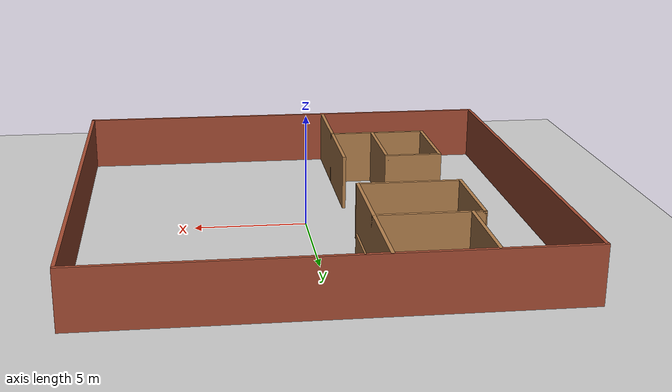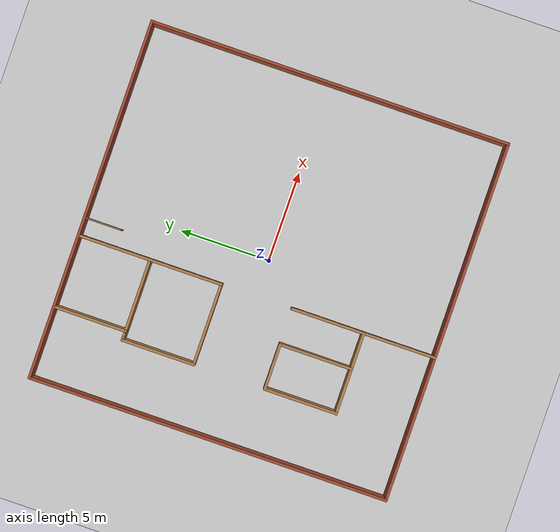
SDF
<?xml version='1.0'?>
<sdf version='1.6'>
  <world name = "model.sdf">
  <include>
      <uri>model://sun</uri>
    </include>

    <!-- A ground plane -->
    <include>
      <uri>model://ground_plane</uri>
    </include>
  <model name='ground_floor'>
    <pose frame=''>0 0.01 0 0 -0 0</pose>
    <link name='Wall_1'>
      <collision name='Wall_1_Collision'>
        <geometry>
          <box>
            <size>20.15 0.15 2.5</size>
          </box>
        </geometry>
        <pose frame=''>0 0 1.25 0 -0 0</pose>
      </collision>
      <visual name='Wall_1_Visual'>
        <pose frame=''>0 0 1.25 0 -0 0</pose>
        <geometry>
          <box>
            <size>20.15 0.15 2.5</size>
          </box>
        </geometry>
        <material>
          <script>
            <uri>file://media/materials/scripts/gazebo.material</uri>
            <name>Gazebo/Bricks</name>
          </script>
          <ambient>1 1 1 1</ambient>
        </material>
        <meta>
          <layer>0</layer>
        </meta>
      </visual>
      <pose frame=''>0 10.01 0 0 -0 0</pose>
    </link>
    <link name='Wall_10'>
      <collision name='Wall_10_Collision'>
        <geometry>
          <box>
            <size>20.15 0.15 2.5</size>
          </box>
        </geometry>
        <pose frame=''>0 0 1.25 0 -0 0</pose>
      </collision>
      <visual name='Wall_10_Visual'>
        <pose frame=''>0 0 1.25 0 -0 0</pose>
        <geometry>
          <box>
            <size>20.15 0.15 2.5</size>
          </box>
        </geometry>
        <material>
          <script>
            <uri>file://media/materials/scripts/gazebo.material</uri>
            <name>Gazebo/Bricks</name>
          </script>
          <ambient>1 1 1 1</ambient>
        </material>
        <meta>
          <layer>0</layer>
        </meta>
      </visual>
      <pose frame=''>10 -0.01 0 0 -0 1.5708</pose>
    </link>
    <link name='Wall_12'>
      <collision name='Wall_12_Collision'>
        <geometry>
          <box>
            <size>8.15 0.15 2.5</size>
          </box>
        </geometry>
        <pose frame=''>0 0 1.25 0 -0 0</pose>
      </collision>
      <visual name='Wall_12_Visual'>
        <pose frame=''>0 0 1.25 0 -0 0</pose>
        <geometry>
          <box>
            <size>8.15 0.15 2.5</size>
          </box>
        </geometry>
        <material>
          <script>
            <uri>file://media/materials/scripts/gazebo.material</uri>
            <name>Gazebo/Wood</name>
          </script>
          <ambient>1 1 1 1</ambient>
        </material>
        <meta>
          <layer>0</layer>
        </meta>
      </visual>
      <pose frame=''>-2 5.99 0 0 -0 -1.5708</pose>
    </link>
    <link name='Wall_14'>
      <collision name='Wall_14_Collision'>
        <geometry>
          <box>
            <size>4.15 0.15 2.5</size>
          </box>
        </geometry>
        <pose frame=''>0 0 1.25 0 -0 0</pose>
      </collision>
      <visual name='Wall_14_Visual'>
        <pose frame=''>0 0 1.25 0 -0 0</pose>
        <geometry>
          <box>
            <size>4.15 0.15 2.5</size>
          </box>
        </geometry>
        <material>
          <script>
            <uri>file://media/materials/scripts/gazebo.material</uri>
            <name>Gazebo/Wood</name>
          </script>
          <ambient>1 1 1 1</ambient>
        </material>
        <meta>
          <layer>0</layer>
        </meta>
      </visual>
      <pose frame=''>-6 7.99 0 0 -0 -1.5708</pose>
    </link>
    <link name='Wall_16'>
      <collision name='Wall_16_Collision'>
        <geometry>
          <box>
            <size>0.65 0.15 2.5</size>
          </box>
        </geometry>
        <pose frame=''>0 0 1.25 0 -0 0</pose>
      </collision>
      <visual name='Wall_16_Visual'>
        <pose frame=''>0 0 1.25 0 -0 0</pose>
        <geometry>
          <box>
            <size>0.65 0.15 2.5</size>
          </box>
        </geometry>
        <material>
          <script>
            <uri>file://media/materials/scripts/gazebo.material</uri>
            <name>Gazebo/Wood</name>
          </script>
          <ambient>1 1 1 1</ambient>
        </material>
        <meta>
          <layer>0</layer>
        </meta>
      </visual>
      <pose frame=''>-6.25 5.99 0 0 -0 3.14159</pose>
    </link>
    <link name='Wall_18'>
      <collision name='Wall_18_Collision'>
        <geometry>
          <box>
            <size>4.15 0.15 2.5</size>
          </box>
        </geometry>
        <pose frame=''>0 0 1.25 0 -0 0</pose>
      </collision>
      <visual name='Wall_18_Visual'>
        <pose frame=''>0 0 1.25 0 -0 0</pose>
        <geometry>
          <box>
            <size>4.15 0.15 2.5</size>
          </box>
        </geometry>
        <material>
          <script>
            <uri>file://media/materials/scripts/gazebo.material</uri>
            <name>Gazebo/Wood</name>
          </script>
          <ambient>1 1 1 1</ambient>
        </material>
        <meta>
          <layer>0</layer>
        </meta>
      </visual>
      <pose frame=''>-6.5 3.99 0 0 -0 -1.5708</pose>
    </link>
    <link name='Wall_20'>
      <collision name='Wall_20_Collision'>
        <geometry>
          <box>
            <size>4.65 0.15 2.5</size>
          </box>
        </geometry>
        <pose frame=''>0 0 1.25 0 -0 0</pose>
      </collision>
      <visual name='Wall_20_Visual'>
        <pose frame=''>0 0 1.25 0 -0 0</pose>
        <geometry>
          <box>
            <size>4.65 0.15 2.5</size>
          </box>
        </geometry>
        <material>
          <script>
            <uri>file://media/materials/scripts/gazebo.material</uri>
            <name>Gazebo/Wood</name>
          </script>
          <ambient>1 1 1 1</ambient>
        </material>
        <meta>
          <layer>0</layer>
        </meta>
      </visual>
      <pose frame=''>-4.25 1.99 0 0 -0 0</pose>
    </link>
    <link name='Wall_22'>
      <collision name='Wall_22_Collision'>
        <geometry>
          <box>
            <size>2.07 0.07 2.5</size>
          </box>
        </geometry>
        <pose frame=''>0 0 1.25 0 -0 0</pose>
      </collision>
      <visual name='Wall_22_Visual'>
        <pose frame=''>0 0 1.25 0 -0 0</pose>
        <geometry>
          <box>
            <size>2.07 0.07 2.5</size>
          </box>
        </geometry>
        <material>
          <script>
            <uri>file://media/materials/scripts/gazebo.material</uri>
            <name>Gazebo/Wood</name>
          </script>
          <ambient>1 1 1 1</ambient>
        </material>
        <meta>
          <layer>0</layer>
        </meta>
      </visual>
      <pose frame=''>-1 8.99 0 0 -0 -1.5708</pose>
    </link>
    <link name='Wall_28'>
      <collision name='Wall_28_Collision'>
        <geometry>
          <box>
            <size>4.65 0.15 2.5</size>
          </box>
        </geometry>
        <pose frame=''>0 0 1.25 0 -0 0</pose>
      </collision>
      <visual name='Wall_28_Visual'>
        <pose frame=''>0 0 1.25 0 -0 0</pose>
        <geometry>
          <box>
            <size>4.65 0.15 2.5</size>
          </box>
        </geometry>
        <material>
          <script>
            <uri>file://media/materials/scripts/gazebo.material</uri>
            <name>Gazebo/Wood</name>
          </script>
          <ambient>1 1 1 1</ambient>
        </material>
        <meta>
          <layer>0</layer>
        </meta>
      </visual>
      <pose frame=''>-4.25 5.99 0 0 -0 0</pose>
    </link>
    <link name='Wall_3'>
      <collision name='Wall_3_Collision'>
        <geometry>
          <box>
            <size>20.15 0.15 2.5</size>
          </box>
        </geometry>
        <pose frame=''>0 0 1.25 0 -0 0</pose>
      </collision>
      <visual name='Wall_3_Visual'>
        <pose frame=''>0 0 1.25 0 -0 0</pose>
        <geometry>
          <box>
            <size>20.15 0.15 2.5</size>
          </box>
        </geometry>
        <material>
          <script>
            <uri>file://media/materials/scripts/gazebo.material</uri>
            <name>Gazebo/Bricks</name>
          </script>
          <ambient>1 1 1 1</ambient>
        </material>
        <meta>
          <layer>0</layer>
        </meta>
      </visual>
      <pose frame=''>-10 -0.01 0 0 -0 -1.5708</pose>
    </link>
    <link name='Wall_30'>
      <collision name='Wall_30_Collision'>
        <geometry>
          <box>
            <size>2.65 0.15 2.5</size>
          </box>
        </geometry>
        <pose frame=''>0 0 1.25 0 -0 0</pose>
      </collision>
      <visual name='Wall_30_Visual'>
        <pose frame=''>0 0 1.25 0 -0 0</pose>
        <geometry>
          <box>
            <size>2.65 0.15 2.5</size>
          </box>
        </geometry>
        <material>
          <script>
            <uri>file://media/materials/scripts/gazebo.material</uri>
            <name>Gazebo/Wood</name>
          </script>
          <ambient>1 1 1 1</ambient>
        </material>
        <meta>
          <layer>0</layer>
        </meta>
      </visual>
      <pose frame=''>-5.25 -2.01 0 0 -0 0</pose>
    </link>
    <link name='Wall_32'>
      <collision name='Wall_32_Collision'>
        <geometry>
          <box>
            <size>4.15 0.15 2.5</size>
          </box>
        </geometry>
        <pose frame=''>0 0 1.25 0 -0 0</pose>
      </collision>
      <visual name='Wall_32_Visual'>
        <pose frame=''>0 0 1.25 0 -0 0</pose>
        <geometry>
          <box>
            <size>4.15 0.15 2.5</size>
          </box>
        </geometry>
        <material>
          <script>
            <uri>file://media/materials/scripts/gazebo.material</uri>
            <name>Gazebo/Wood</name>
          </script>
          <ambient>1 1 1 1</ambient>
        </material>
        <meta>
          <layer>0</layer>
        </meta>
      </visual>
      <pose frame=''>-6.5 -4.01 0 0 -0 -1.5708</pose>
    </link>
    <link name='Wall_34'>
      <collision name='Wall_34_Collision'>
        <geometry>
          <box>
            <size>4.15 0.15 2.5</size>
          </box>
        </geometry>
        <pose frame=''>0 0 1.25 0 -0 0</pose>
      </collision>
      <visual name='Wall_34_Visual'>
        <pose frame=''>0 0 1.25 0 -0 0</pose>
        <geometry>
          <box>
            <size>4.15 0.15 2.5</size>
          </box>
        </geometry>
        <material>
          <script>
            <uri>file://media/materials/scripts/gazebo.material</uri>
            <name>Gazebo/Wood</name>
          </script>
          <ambient>1 1 1 1</ambient>
        </material>
        <meta>
          <layer>0</layer>
        </meta>
      </visual>
      <pose frame=''>-4 -4.01 0 0 -0 -1.5708</pose>
    </link>
    <link name='Wall_36'>
      <collision name='Wall_36_Collision'>
        <geometry>
          <box>
            <size>4.65 0.15 2.5</size>
          </box>
        </geometry>
        <pose frame=''>0 0 1.25 0 -0 0</pose>
      </collision>
      <visual name='Wall_36_Visual'>
        <pose frame=''>0 0 1.25 0 -0 0</pose>
        <geometry>
          <box>
            <size>4.65 0.15 2.5</size>
          </box>
        </geometry>
        <material>
          <script>
            <uri>file://media/materials/scripts/gazebo.material</uri>
            <name>Gazebo/Wood</name>
          </script>
          <ambient>1 1 1 1</ambient>
        </material>
        <meta>
          <layer>0</layer>
        </meta>
      </visual>
      <pose frame=''>-4.25 -6.01 0 0 -0 0</pose>
    </link>
    <link name='Wall_38'>
      <collision name='Wall_38_Collision'>
        <geometry>
          <box>
            <size>8.15 0.15 2.5</size>
          </box>
        </geometry>
        <pose frame=''>0 0 1.25 0 -0 0</pose>
      </collision>
      <visual name='Wall_38_Visual'>
        <pose frame=''>0 0 1.25 0 -0 0</pose>
        <geometry>
          <box>
            <size>8.15 0.15 2.5</size>
          </box>
        </geometry>
        <material>
          <script>
            <uri>file://media/materials/scripts/gazebo.material</uri>
            <name>Gazebo/Wood</name>
          </script>
          <ambient>1 1 1 1</ambient>
        </material>
        <meta>
          <layer>0</layer>
        </meta>
      </visual>
      <pose frame=''>-2 -6.01 0 0 -0 -1.5708</pose>
    </link>
    <link name='Wall_5'>
      <collision name='Wall_5_Collision'>
        <geometry>
          <box>
            <size>20.15 0.15 2.5</size>
          </box>
        </geometry>
        <pose frame=''>0 0 1.25 0 -0 0</pose>
      </collision>
      <visual name='Wall_5_Visual'>
        <pose frame=''>0 0 1.25 0 -0 0</pose>
        <geometry>
          <box>
            <size>20.15 0.15 2.5</size>
          </box>
        </geometry>
        <material>
          <script>
            <uri>file://media/materials/scripts/gazebo.material</uri>
            <name>Gazebo/Bricks</name>
          </script>
          <ambient>1 1 1 1</ambient>
        </material>
        <meta>
          <layer>0</layer>
        </meta>
      </visual>
      <pose frame=''>0 -10.01 0 0 -0 0</pose>
    </link>
    <static>1</static>
  </model>
  </world>
</sdf>
